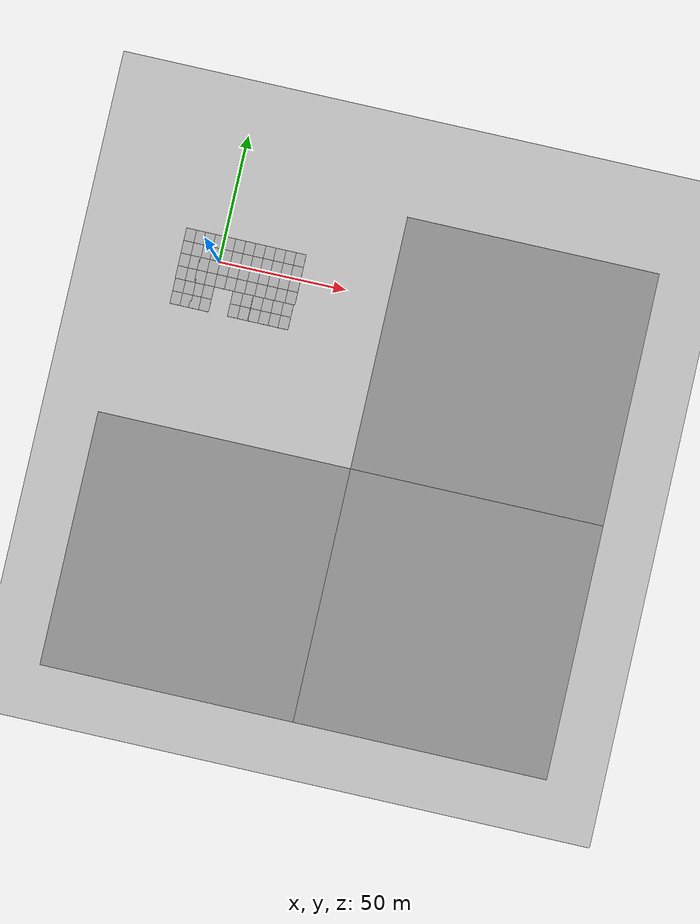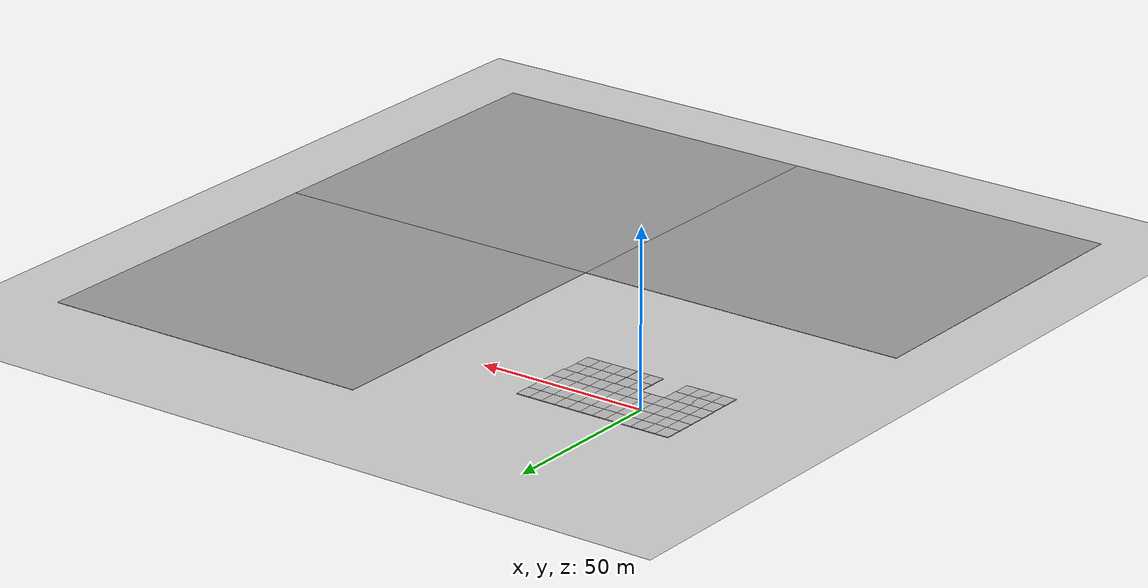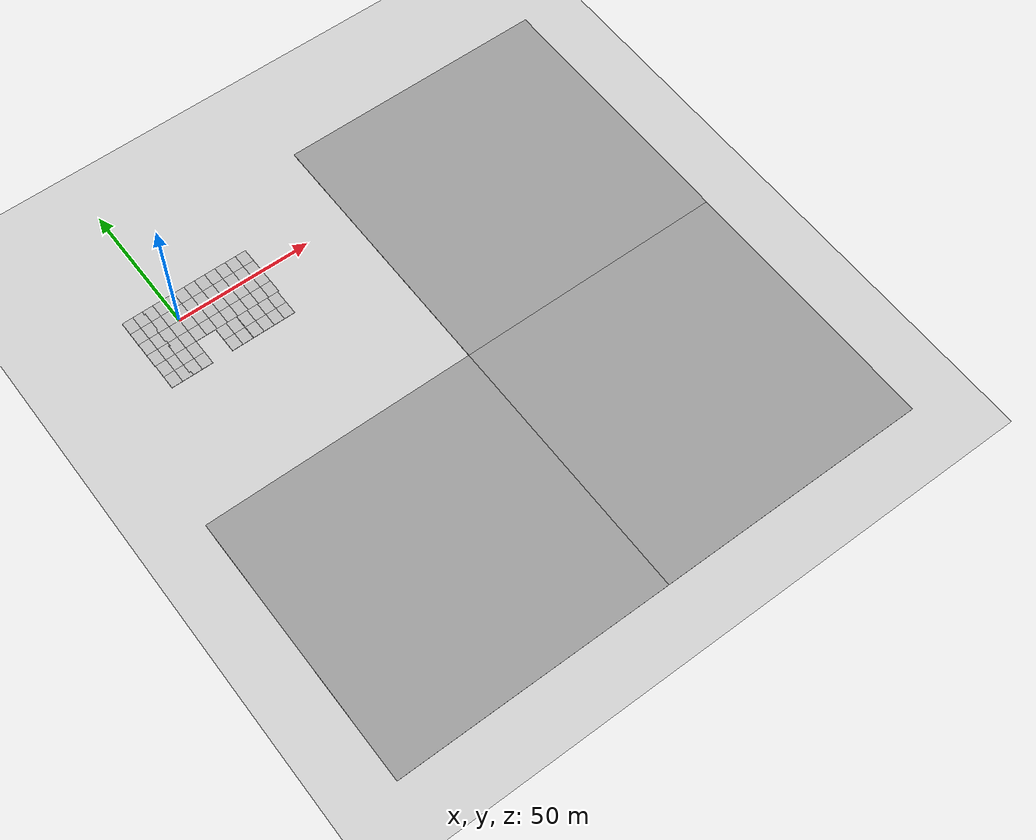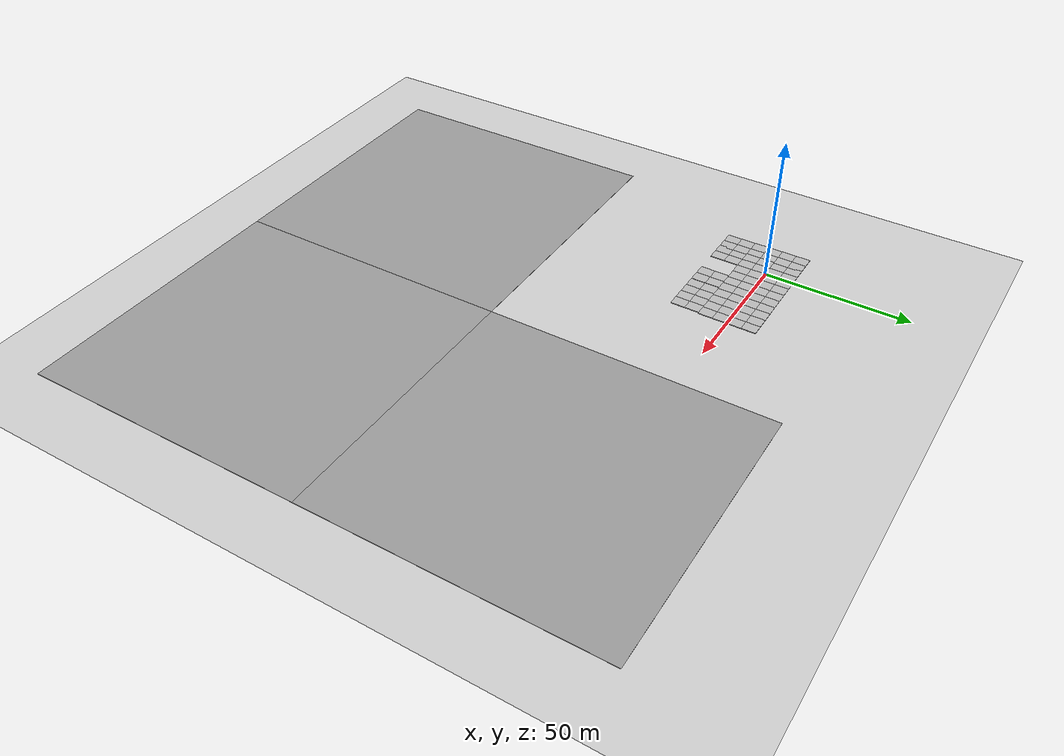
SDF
<sdf version="1.6">
 <world name="default">
  <light name="sun" type="directional">
   <pose>0 0 10 0 -0 0</pose>
   <diffuse>0.8 0.8 0.8 1</diffuse>
   <specular>0.2 0.2 0.2 1</specular>
   <attenuation>
    <range>1000</range>
    <constant>0.9</constant>
    <linear>0.01</linear>
    <quadratic>0.001</quadratic>
   </attenuation>
   <direction>-0.5 0.1 -0.9</direction>
  </light>
  <plugin name="ros_interface_plugin" filename="librotors_gazebo_ros_interface_plugin.so"/>
  <physics name="default_physics" default="0" type="ode">
   <ode>
    <solver>
     <type>quick</type>
     <iters>1000</iters>
     <sor>1.3</sor>
     <use_dynamic_moi_rescaling>0</use_dynamic_moi_rescaling>
    </solver>
    <constraints>
     <cfm>0</cfm>
     <erp>0.2</erp>
     <contact_max_correcting_vel>100</contact_max_correcting_vel>
     <contact_surface_layer>0.001</contact_surface_layer>
    </constraints>
   </ode>
   <max_step_size>0.01</max_step_size>
   <real_time_factor>1</real_time_factor>
   <real_time_update_rate>100</real_time_update_rate>
  </physics>
  <plugin name="gazebo_octomap" filename="librotors_gazebo_octomap_plugin.so">
   <octomapPubTopic>world/octomap</octomapPubTopic>
   <octomapServiceName>world/get_octomap</octomapServiceName>
  </plugin>
  <scene><ambient>0.4 0.4 0.4 1</ambient><background>0.7 0.7 0.7 1</background><shadows>1</shadows></scene>
  <spherical_coordinates>
   <surface_model>EARTH_WGS84</surface_model>
   <latitude_deg>47.3667</latitude_deg>
   <longitude_deg>8.55</longitude_deg>
   <elevation>500</elevation>
   <heading_deg>0</heading_deg>
  </spherical_coordinates>
  <model name="ground_plane">
   <static>1</static>
   <link name="link">
    <collision name="collision">
     <geometry><plane><normal>0 0 1</normal><size>100 100</size></plane></geometry>
     <surface><friction><ode><mu>100</mu><mu2>50</mu2></ode></friction></surface>
    </collision>
    <visual name="visual">
     <cast_shadows>0</cast_shadows>
     <geometry><plane><normal>0 0 1</normal><size>100 100</size></plane></geometry>
     <material>
      <script><uri>file://media/materials/scripts/gazebo.material</uri><name>Gazebo/Grey</name></script>
     </material>
    </visual>
    <velocity_decay><linear>0</linear><angular>0</angular></velocity_decay>
   </link>
   <pose>17 -17 0 0 -0 0</pose>
  </model>
  <model name="mud_box_0">
   <static>1</static>
   <link name="link">
    <collision name="collision"><geometry><box><size>8 10 0.2</size></box></geometry></collision>
    <visual name="visual_1">
     <pose>-2 2.5 0 0 -0 0</pose>
     <cast_shadows>0</cast_shadows>
     <geometry><box><size>4 5 0.2</size></box></geometry>
     <material>
      <script>
       <uri>model://mud_box/materials/scripts</uri>
       <uri>model://mud_box/materials/textures</uri>
       <name>vrc/mud</name>
      </script>
     </material>
    </visual>
    <visual name="visual_2">
     <pose>2 2.5 0 0 -0 0</pose>
     <cast_shadows>0</cast_shadows>
     <geometry><box><size>4 5 0.2</size></box></geometry>
     <material>
      <script>
       <uri>model://mud_box/materials/scripts</uri>
       <uri>model://mud_box/materials/textures</uri>
       <name>vrc/mud</name>
      </script>
     </material>
    </visual>
    <visual name="visual_3">
     <pose>2 -2.5 0 0 -0 0</pose>
     <cast_shadows>0</cast_shadows>
     <geometry><box><size>4 5 0.2</size></box></geometry>
     <material>
      <script>
       <uri>model://mud_box/materials/scripts</uri>
       <uri>model://mud_box/materials/textures</uri>
       <name>vrc/mud</name>
      </script>
     </material>
    </visual>
    <visual name="visual_4">
     <pose>-2 -2.5 0 0 -0 0</pose>
     <cast_shadows>0</cast_shadows>
     <geometry><box><size>4 5 0.2</size></box></geometry>
     <material>
      <script>
       <uri>model://mud_box/materials/scripts</uri>
       <uri>model://mud_box/materials/textures</uri>
       <name>vrc/mud</name>
      </script>
     </material>
    </visual>
    <velocity_decay><linear>0</linear><angular>0</angular></velocity_decay>
   </link>
   <pose>4 5 0 0 -0 0</pose>
  </model>
  <model name="mud_box_1">
   <static>1</static>
   <link name="link">
    <collision name="collision"><geometry><box><size>8 10 0.2</size></box></geometry></collision>
    <visual name="visual_1">
     <pose>-2 2.5 0 0 -0 0</pose>
     <cast_shadows>0</cast_shadows>
     <geometry><box><size>4 5 0.2</size></box></geometry>
     <material>
      <script>
       <uri>model://mud_box/materials/scripts</uri>
       <uri>model://mud_box/materials/textures</uri>
       <name>vrc/mud</name>
      </script>
     </material>
    </visual>
    <visual name="visual_2">
     <pose>2 2.5 0 0 -0 0</pose>
     <cast_shadows>0</cast_shadows>
     <geometry><box><size>4 5 0.2</size></box></geometry>
     <material>
      <script>
       <uri>model://mud_box/materials/scripts</uri>
       <uri>model://mud_box/materials/textures</uri>
       <name>vrc/mud</name>
      </script>
     </material>
    </visual>
    <visual name="visual_3">
     <pose>2 -2.5 0 0 -0 0</pose>
     <cast_shadows>0</cast_shadows>
     <geometry><box><size>4 5 0.2</size></box></geometry>
     <material>
      <script>
       <uri>model://mud_box/materials/scripts</uri>
       <uri>model://mud_box/materials/textures</uri>
       <name>vrc/mud</name>
      </script>
     </material>
    </visual>
    <visual name="visual_4">
     <pose>-2 -2.5 0 0 -0 0</pose>
     <cast_shadows>0</cast_shadows>
     <geometry><box><size>4 5 0.2</size></box></geometry>
     <material>
      <script>
       <uri>model://mud_box/materials/scripts</uri>
       <uri>model://mud_box/materials/textures</uri>
       <name>vrc/mud</name>
      </script>
     </material>
    </visual>
    <velocity_decay><linear>0</linear><angular>0</angular></velocity_decay>
   </link>
   <pose>-4 -5 0 0 -0 0</pose>
  </model>
  <model name="mud_box_2">
   <static>1</static>
   <link name="link">
    <collision name="collision"><geometry><box><size>8 10 0.2</size></box></geometry></collision>
    <visual name="visual_1">
     <pose>-2 2.5 0 0 -0 0</pose>
     <cast_shadows>0</cast_shadows>
     <geometry><box><size>4 5 0.2</size></box></geometry>
     <material>
      <script>
       <uri>model://mud_box/materials/scripts</uri>
       <uri>model://mud_box/materials/textures</uri>
       <name>vrc/mud</name>
      </script>
     </material>
    </visual>
    <visual name="visual_2">
     <pose>2 2.5 0 0 -0 0</pose>
     <cast_shadows>0</cast_shadows>
     <geometry><box><size>4 5 0.2</size></box></geometry>
     <material>
      <script>
       <uri>model://mud_box/materials/scripts</uri>
       <uri>model://mud_box/materials/textures</uri>
       <name>vrc/mud</name>
      </script>
     </material>
    </visual>
    <visual name="visual_3">
     <pose>2 -2.5 0 0 -0 0</pose>
     <cast_shadows>0</cast_shadows>
     <geometry><box><size>4 5 0.2</size></box></geometry>
     <material>
      <script>
       <uri>model://mud_box/materials/scripts</uri>
       <uri>model://mud_box/materials/textures</uri>
       <name>vrc/mud</name>
      </script>
     </material>
    </visual>
    <visual name="visual_4">
     <pose>-2 -2.5 0 0 -0 0</pose>
     <cast_shadows>0</cast_shadows>
     <geometry><box><size>4 5 0.2</size></box></geometry>
     <material>
      <script>
       <uri>model://mud_box/materials/scripts</uri>
       <uri>model://mud_box/materials/textures</uri>
       <name>vrc/mud</name>
      </script>
     </material>
    </visual>
    <velocity_decay><linear>0</linear><angular>0</angular></velocity_decay>
   </link>
   <pose>4 -5 0 0 -0 0</pose>
  </model>
  <model name="mud_box_3">
   <static>1</static>
   <link name="link">
    <collision name="collision"><geometry><box><size>8 10 0.2</size></box></geometry></collision>
    <visual name="visual_1">
     <pose>-2 2.5 0 0 -0 0</pose>
     <cast_shadows>0</cast_shadows>
     <geometry><box><size>4 5 0.2</size></box></geometry>
     <material>
      <script>
       <uri>model://mud_box/materials/scripts</uri>
       <uri>model://mud_box/materials/textures</uri>
       <name>vrc/mud</name>
      </script>
     </material>
    </visual>
    <visual name="visual_2">
     <pose>2 2.5 0 0 -0 0</pose>
     <cast_shadows>0</cast_shadows>
     <geometry><box><size>4 5 0.2</size></box></geometry>
     <material>
      <script>
       <uri>model://mud_box/materials/scripts</uri>
       <uri>model://mud_box/materials/textures</uri>
       <name>vrc/mud</name>
      </script>
     </material>
    </visual>
    <visual name="visual_3">
     <pose>2 -2.5 0 0 -0 0</pose>
     <cast_shadows>0</cast_shadows>
     <geometry><box><size>4 5 0.2</size></box></geometry>
     <material>
      <script>
       <uri>model://mud_box/materials/scripts</uri>
       <uri>model://mud_box/materials/textures</uri>
       <name>vrc/mud</name>
      </script>
     </material>
    </visual>
    <visual name="visual_4">
     <pose>-2 -2.5 0 0 -0 0</pose>
     <cast_shadows>0</cast_shadows>
     <geometry><box><size>4 5 0.2</size></box></geometry>
     <material>
      <script>
       <uri>model://mud_box/materials/scripts</uri>
       <uri>model://mud_box/materials/textures</uri>
       <name>vrc/mud</name>
      </script>
     </material>
    </visual>
    <velocity_decay><linear>0</linear><angular>0</angular></velocity_decay>
   </link>
   <pose>12 5 0 0 -0 0</pose>
  </model>
  <model name="mud_box_4">
   <static>1</static>
   <link name="link">
    <collision name="collision"><geometry><box><size>8 10 0.2</size></box></geometry></collision>
    <visual name="visual_1">
     <pose>-2 2.5 0 0 -0 0</pose>
     <cast_shadows>0</cast_shadows>
     <geometry><box><size>4 5 0.2</size></box></geometry>
     <material>
      <script>
       <uri>model://mud_box/materials/scripts</uri>
       <uri>model://mud_box/materials/textures</uri>
       <name>vrc/mud</name>
      </script>
     </material>
    </visual>
    <visual name="visual_2">
     <pose>2 2.5 0 0 -0 0</pose>
     <cast_shadows>0</cast_shadows>
     <geometry><box><size>4 5 0.2</size></box></geometry>
     <material>
      <script>
       <uri>model://mud_box/materials/scripts</uri>
       <uri>model://mud_box/materials/textures</uri>
       <name>vrc/mud</name>
      </script>
     </material>
    </visual>
    <visual name="visual_3">
     <pose>2 -2.5 0 0 -0 0</pose>
     <cast_shadows>0</cast_shadows>
     <geometry><box><size>4 5 0.2</size></box></geometry>
     <material>
      <script>
       <uri>model://mud_box/materials/scripts</uri>
       <uri>model://mud_box/materials/textures</uri>
       <name>vrc/mud</name>
      </script>
     </material>
    </visual>
    <visual name="visual_4">
     <pose>-2 -2.5 0 0 -0 0</pose>
     <cast_shadows>0</cast_shadows>
     <geometry><box><size>4 5 0.2</size></box></geometry>
     <material>
      <script>
       <uri>model://mud_box/materials/scripts</uri>
       <uri>model://mud_box/materials/textures</uri>
       <name>vrc/mud</name>
      </script>
     </material>
    </visual>
    <velocity_decay><linear>0</linear><angular>0</angular></velocity_decay>
   </link>
   <pose>-4 5 0 0 -0 0</pose>
  </model>
  <model name="mud_box_5">
   <static>1</static>
   <link name="link">
    <collision name="collision"><geometry><box><size>8 10 0.2</size></box></geometry></collision>
    <visual name="visual_1">
     <pose>-2 2.5 0 0 -0 0</pose>
     <cast_shadows>0</cast_shadows>
     <geometry><box><size>4 5 0.2</size></box></geometry>
     <material>
      <script>
       <uri>model://mud_box/materials/scripts</uri>
       <uri>model://mud_box/materials/textures</uri>
       <name>vrc/mud</name>
      </script>
     </material>
    </visual>
    <visual name="visual_2">
     <pose>2 2.5 0 0 -0 0</pose>
     <cast_shadows>0</cast_shadows>
     <geometry><box><size>4 5 0.2</size></box></geometry>
     <material>
      <script>
       <uri>model://mud_box/materials/scripts</uri>
       <uri>model://mud_box/materials/textures</uri>
       <name>vrc/mud</name>
      </script>
     </material>
    </visual>
    <visual name="visual_3">
     <pose>2 -2.5 0 0 -0 0</pose>
     <cast_shadows>0</cast_shadows>
     <geometry><box><size>4 5 0.2</size></box></geometry>
     <material>
      <script>
       <uri>model://mud_box/materials/scripts</uri>
       <uri>model://mud_box/materials/textures</uri>
       <name>vrc/mud</name>
      </script>
     </material>
    </visual>
    <visual name="visual_4">
     <pose>-2 -2.5 0 0 -0 0</pose>
     <cast_shadows>0</cast_shadows>
     <geometry><box><size>4 5 0.2</size></box></geometry>
     <material>
      <script>
       <uri>model://mud_box/materials/scripts</uri>
       <uri>model://mud_box/materials/textures</uri>
       <name>vrc/mud</name>
      </script>
     </material>
    </visual>
    <velocity_decay><linear>0</linear><angular>0</angular></velocity_decay>
   </link>
   <pose>-11.5813 5 0 0 -0 0</pose>
  </model>
  <model name="mud_box_6">
   <static>1</static>
   <link name="link">
    <collision name="collision"><geometry><box><size>8 10 0.2</size></box></geometry></collision>
    <visual name="visual_1">
     <pose>-2 2.5 0 0 -0 0</pose>
     <cast_shadows>0</cast_shadows>
     <geometry><box><size>4 5 0.2</size></box></geometry>
     <material>
      <script>
       <uri>model://mud_box/materials/scripts</uri>
       <uri>model://mud_box/materials/textures</uri>
       <name>vrc/mud</name>
      </script>
     </material>
    </visual>
    <visual name="visual_2">
     <pose>2 2.5 0 0 -0 0</pose>
     <cast_shadows>0</cast_shadows>
     <geometry><box><size>4 5 0.2</size></box></geometry>
     <material>
      <script>
       <uri>model://mud_box/materials/scripts</uri>
       <uri>model://mud_box/materials/textures</uri>
       <name>vrc/mud</name>
      </script>
     </material>
    </visual>
    <visual name="visual_3">
     <pose>2 -2.5 0 0 -0 0</pose>
     <cast_shadows>0</cast_shadows>
     <geometry><box><size>4 5 0.2</size></box></geometry>
     <material>
      <script>
       <uri>model://mud_box/materials/scripts</uri>
       <uri>model://mud_box/materials/textures</uri>
       <name>vrc/mud</name>
      </script>
     </material>
    </visual>
    <visual name="visual_4">
     <pose>-2 -2.5 0 0 -0 0</pose>
     <cast_shadows>0</cast_shadows>
     <geometry><box><size>4 5 0.2</size></box></geometry>
     <material>
      <script>
       <uri>model://mud_box/materials/scripts</uri>
       <uri>model://mud_box/materials/textures</uri>
       <name>vrc/mud</name>
      </script>
     </material>
    </visual>
    <velocity_decay><linear>0</linear><angular>0</angular></velocity_decay>
   </link>
   <pose>-11.5408 -5 0 0 -0 0</pose>
  </model>
  <model name="mud_box_7">
   <static>1</static>
   <link name="link">
    <collision name="collision"><geometry><box><size>8 10 0.2</size></box></geometry></collision>
    <visual name="visual_1">
     <pose>-2 2.5 0 0 -0 0</pose>
     <cast_shadows>0</cast_shadows>
     <geometry><box><size>4 5 0.2</size></box></geometry>
     <material>
      <script>
       <uri>model://mud_box/materials/scripts</uri>
       <uri>model://mud_box/materials/textures</uri>
       <name>vrc/mud</name>
      </script>
     </material>
    </visual>
    <visual name="visual_2">
     <pose>2 2.5 0 0 -0 0</pose>
     <cast_shadows>0</cast_shadows>
     <geometry><box><size>4 5 0.2</size></box></geometry>
     <material>
      <script>
       <uri>model://mud_box/materials/scripts</uri>
       <uri>model://mud_box/materials/textures</uri>
       <name>vrc/mud</name>
      </script>
     </material>
    </visual>
    <visual name="visual_3">
     <pose>2 -2.5 0 0 -0 0</pose>
     <cast_shadows>0</cast_shadows>
     <geometry><box><size>4 5 0.2</size></box></geometry>
     <material>
      <script>
       <uri>model://mud_box/materials/scripts</uri>
       <uri>model://mud_box/materials/textures</uri>
       <name>vrc/mud</name>
      </script>
     </material>
    </visual>
    <visual name="visual_4">
     <pose>-2 -2.5 0 0 -0 0</pose>
     <cast_shadows>0</cast_shadows>
     <geometry><box><size>4 5 0.2</size></box></geometry>
     <material>
      <script>
       <uri>model://mud_box/materials/scripts</uri>
       <uri>model://mud_box/materials/textures</uri>
       <name>vrc/mud</name>
      </script>
     </material>
    </visual>
    <velocity_decay><linear>0</linear><angular>0</angular></velocity_decay>
   </link>
   <pose>-11.4023 -15 0 0 -0 0</pose>
  </model>
  <model name="mud_box_8">
   <static>1</static>
   <link name="link">
    <collision name="collision"><geometry><box><size>8 10 0.2</size></box></geometry></collision>
    <visual name="visual_1">
     <pose>-2 2.5 0 0 -0 0</pose>
     <cast_shadows>0</cast_shadows>
     <geometry><box><size>4 5 0.2</size></box></geometry>
     <material>
      <script>
       <uri>model://mud_box/materials/scripts</uri>
       <uri>model://mud_box/materials/textures</uri>
       <name>vrc/mud</name>
      </script>
     </material>
    </visual>
    <visual name="visual_2">
     <pose>2 2.5 0 0 -0 0</pose>
     <cast_shadows>0</cast_shadows>
     <geometry><box><size>4 5 0.2</size></box></geometry>
     <material>
      <script>
       <uri>model://mud_box/materials/scripts</uri>
       <uri>model://mud_box/materials/textures</uri>
       <name>vrc/mud</name>
      </script>
     </material>
    </visual>
    <visual name="visual_3">
     <pose>2 -2.5 0 0 -0 0</pose>
     <cast_shadows>0</cast_shadows>
     <geometry><box><size>4 5 0.2</size></box></geometry>
     <material>
      <script>
       <uri>model://mud_box/materials/scripts</uri>
       <uri>model://mud_box/materials/textures</uri>
       <name>vrc/mud</name>
      </script>
     </material>
    </visual>
    <visual name="visual_4">
     <pose>-2 -2.5 0 0 -0 0</pose>
     <cast_shadows>0</cast_shadows>
     <geometry><box><size>4 5 0.2</size></box></geometry>
     <material>
      <script>
       <uri>model://mud_box/materials/scripts</uri>
       <uri>model://mud_box/materials/textures</uri>
       <name>vrc/mud</name>
      </script>
     </material>
    </visual>
    <velocity_decay><linear>0</linear><angular>0</angular></velocity_decay>
   </link>
   <pose>-4 -15 0 0 -0 0</pose>
  </model>
  <model name="mud_box_9">
   <static>1</static>
   <link name="link">
    <collision name="collision"><geometry><box><size>8 10 0.2</size></box></geometry></collision>
    <visual name="visual_1">
     <pose>-2 2.5 0 0 -0 0</pose>
     <cast_shadows>0</cast_shadows>
     <geometry><box><size>4 5 0.2</size></box></geometry>
     <material>
      <script>
       <uri>model://mud_box/materials/scripts</uri>
       <uri>model://mud_box/materials/textures</uri>
       <name>vrc/mud</name>
      </script>
     </material>
    </visual>
    <visual name="visual_2">
     <pose>2 2.5 0 0 -0 0</pose>
     <cast_shadows>0</cast_shadows>
     <geometry><box><size>4 5 0.2</size></box></geometry>
     <material>
      <script>
       <uri>model://mud_box/materials/scripts</uri>
       <uri>model://mud_box/materials/textures</uri>
       <name>vrc/mud</name>
      </script>
     </material>
    </visual>
    <visual name="visual_3">
     <pose>2 -2.5 0 0 -0 0</pose>
     <cast_shadows>0</cast_shadows>
     <geometry><box><size>4 5 0.2</size></box></geometry>
     <material>
      <script>
       <uri>model://mud_box/materials/scripts</uri>
       <uri>model://mud_box/materials/textures</uri>
       <name>vrc/mud</name>
      </script>
     </material>
    </visual>
    <visual name="visual_4">
     <pose>-2 -2.5 0 0 -0 0</pose>
     <cast_shadows>0</cast_shadows>
     <geometry><box><size>4 5 0.2</size></box></geometry>
     <material>
      <script>
       <uri>model://mud_box/materials/scripts</uri>
       <uri>model://mud_box/materials/textures</uri>
       <name>vrc/mud</name>
      </script>
     </material>
    </visual>
    <velocity_decay><linear>0</linear><angular>0</angular></velocity_decay>
   </link>
   <pose>12 -5 0 0 -0 0</pose>
  </model>
  <model name="mud_box_10">
   <static>1</static>
   <link name="link">
    <collision name="collision"><geometry><box><size>8 10 0.2</size></box></geometry></collision>
    <visual name="visual_1">
     <pose>-2 2.5 0 0 -0 0</pose>
     <cast_shadows>0</cast_shadows>
     <geometry><box><size>4 5 0.2</size></box></geometry>
     <material>
      <script>
       <uri>model://mud_box/materials/scripts</uri>
       <uri>model://mud_box/materials/textures</uri>
       <name>vrc/mud</name>
      </script>
     </material>
    </visual>
    <visual name="visual_2">
     <pose>2 2.5 0 0 -0 0</pose>
     <cast_shadows>0</cast_shadows>
     <geometry><box><size>4 5 0.2</size></box></geometry>
     <material>
      <script>
       <uri>model://mud_box/materials/scripts</uri>
       <uri>model://mud_box/materials/textures</uri>
       <name>vrc/mud</name>
      </script>
     </material>
    </visual>
    <visual name="visual_3">
     <pose>2 -2.5 0 0 -0 0</pose>
     <cast_shadows>0</cast_shadows>
     <geometry><box><size>4 5 0.2</size></box></geometry>
     <material>
      <script>
       <uri>model://mud_box/materials/scripts</uri>
       <uri>model://mud_box/materials/textures</uri>
       <name>vrc/mud</name>
      </script>
     </material>
    </visual>
    <visual name="visual_4">
     <pose>-2 -2.5 0 0 -0 0</pose>
     <cast_shadows>0</cast_shadows>
     <geometry><box><size>4 5 0.2</size></box></geometry>
     <material>
      <script>
       <uri>model://mud_box/materials/scripts</uri>
       <uri>model://mud_box/materials/textures</uri>
       <name>vrc/mud</name>
      </script>
     </material>
    </visual>
    <velocity_decay><linear>0</linear><angular>0</angular></velocity_decay>
   </link>
   <pose>20 5 0 0 -0 0</pose>
  </model>
  <model name="mud_box_11">
   <static>1</static>
   <link name="link">
    <collision name="collision"><geometry><box><size>8 10 0.2</size></box></geometry></collision>
    <visual name="visual_1">
     <pose>-2 2.5 0 0 -0 0</pose>
     <cast_shadows>0</cast_shadows>
     <geometry><box><size>4 5 0.2</size></box></geometry>
     <material>
      <script>
       <uri>model://mud_box/materials/scripts</uri>
       <uri>model://mud_box/materials/textures</uri>
       <name>vrc/mud</name>
      </script>
     </material>
    </visual>
    <visual name="visual_2">
     <pose>2 2.5 0 0 -0 0</pose>
     <cast_shadows>0</cast_shadows>
     <geometry><box><size>4 5 0.2</size></box></geometry>
     <material>
      <script>
       <uri>model://mud_box/materials/scripts</uri>
       <uri>model://mud_box/materials/textures</uri>
       <name>vrc/mud</name>
      </script>
     </material>
    </visual>
    <visual name="visual_3">
     <pose>2 -2.5 0 0 -0 0</pose>
     <cast_shadows>0</cast_shadows>
     <geometry><box><size>4 5 0.2</size></box></geometry>
     <material>
      <script>
       <uri>model://mud_box/materials/scripts</uri>
       <uri>model://mud_box/materials/textures</uri>
       <name>vrc/mud</name>
      </script>
     </material>
    </visual>
    <visual name="visual_4">
     <pose>-2 -2.5 0 0 -0 0</pose>
     <cast_shadows>0</cast_shadows>
     <geometry><box><size>4 5 0.2</size></box></geometry>
     <material>
      <script>
       <uri>model://mud_box/materials/scripts</uri>
       <uri>model://mud_box/materials/textures</uri>
       <name>vrc/mud</name>
      </script>
     </material>
    </visual>
    <velocity_decay><linear>0</linear><angular>0</angular></velocity_decay>
   </link>
   <pose>20 -5 0 0 -0 0</pose>
  </model>
  <model name="mud_box_12">
   <static>1</static>
   <link name="link">
    <collision name="collision"><geometry><box><size>8 10 0.2</size></box></geometry></collision>
    <visual name="visual_1">
     <pose>-2 2.5 0 0 -0 0</pose>
     <cast_shadows>0</cast_shadows>
     <geometry><box><size>4 5 0.2</size></box></geometry>
     <material>
      <script>
       <uri>model://mud_box/materials/scripts</uri>
       <uri>model://mud_box/materials/textures</uri>
       <name>vrc/mud</name>
      </script>
     </material>
    </visual>
    <visual name="visual_2">
     <pose>2 2.5 0 0 -0 0</pose>
     <cast_shadows>0</cast_shadows>
     <geometry><box><size>4 5 0.2</size></box></geometry>
     <material>
      <script>
       <uri>model://mud_box/materials/scripts</uri>
       <uri>model://mud_box/materials/textures</uri>
       <name>vrc/mud</name>
      </script>
     </material>
    </visual>
    <visual name="visual_3">
     <pose>2 -2.5 0 0 -0 0</pose>
     <cast_shadows>0</cast_shadows>
     <geometry><box><size>4 5 0.2</size></box></geometry>
     <material>
      <script>
       <uri>model://mud_box/materials/scripts</uri>
       <uri>model://mud_box/materials/textures</uri>
       <name>vrc/mud</name>
      </script>
     </material>
    </visual>
    <visual name="visual_4">
     <pose>-2 -2.5 0 0 -0 0</pose>
     <cast_shadows>0</cast_shadows>
     <geometry><box><size>4 5 0.2</size></box></geometry>
     <material>
      <script>
       <uri>model://mud_box/materials/scripts</uri>
       <uri>model://mud_box/materials/textures</uri>
       <name>vrc/mud</name>
      </script>
     </material>
    </visual>
    <velocity_decay><linear>0</linear><angular>0</angular></velocity_decay>
   </link>
   <pose>28 5 0 0 -0 0</pose>
  </model>
  <model name="mud_box_13">
   <static>1</static>
   <link name="link">
    <collision name="collision"><geometry><box><size>8 10 0.2</size></box></geometry></collision>
    <visual name="visual_1">
     <pose>-2 2.5 0 0 -0 0</pose>
     <cast_shadows>0</cast_shadows>
     <geometry><box><size>4 5 0.2</size></box></geometry>
     <material>
      <script>
       <uri>model://mud_box/materials/scripts</uri>
       <uri>model://mud_box/materials/textures</uri>
       <name>vrc/mud</name>
      </script>
     </material>
    </visual>
    <visual name="visual_2">
     <pose>2 2.5 0 0 -0 0</pose>
     <cast_shadows>0</cast_shadows>
     <geometry><box><size>4 5 0.2</size></box></geometry>
     <material>
      <script>
       <uri>model://mud_box/materials/scripts</uri>
       <uri>model://mud_box/materials/textures</uri>
       <name>vrc/mud</name>
      </script>
     </material>
    </visual>
    <visual name="visual_3">
     <pose>2 -2.5 0 0 -0 0</pose>
     <cast_shadows>0</cast_shadows>
     <geometry><box><size>4 5 0.2</size></box></geometry>
     <material>
      <script>
       <uri>model://mud_box/materials/scripts</uri>
       <uri>model://mud_box/materials/textures</uri>
       <name>vrc/mud</name>
      </script>
     </material>
    </visual>
    <visual name="visual_4">
     <pose>-2 -2.5 0 0 -0 0</pose>
     <cast_shadows>0</cast_shadows>
     <geometry><box><size>4 5 0.2</size></box></geometry>
     <material>
      <script>
       <uri>model://mud_box/materials/scripts</uri>
       <uri>model://mud_box/materials/textures</uri>
       <name>vrc/mud</name>
      </script>
     </material>
    </visual>
    <velocity_decay><linear>0</linear><angular>0</angular></velocity_decay>
   </link>
   <pose>28 -5 0 0 -0 0</pose>
  </model>
  <model name="mud_box_14">
   <static>1</static>
   <link name="link">
    <collision name="collision"><geometry><box><size>8 10 0.2</size></box></geometry></collision>
    <visual name="visual_1">
     <pose>-2 2.5 0 0 -0 0</pose>
     <cast_shadows>0</cast_shadows>
     <geometry><box><size>4 5 0.2</size></box></geometry>
     <material>
      <script>
       <uri>model://mud_box/materials/scripts</uri>
       <uri>model://mud_box/materials/textures</uri>
       <name>vrc/mud</name>
      </script>
     </material>
    </visual>
    <visual name="visual_2">
     <pose>2 2.5 0 0 -0 0</pose>
     <cast_shadows>0</cast_shadows>
     <geometry><box><size>4 5 0.2</size></box></geometry>
     <material>
      <script>
       <uri>model://mud_box/materials/scripts</uri>
       <uri>model://mud_box/materials/textures</uri>
       <name>vrc/mud</name>
      </script>
     </material>
    </visual>
    <visual name="visual_3">
     <pose>2 -2.5 0 0 -0 0</pose>
     <cast_shadows>0</cast_shadows>
     <geometry><box><size>4 5 0.2</size></box></geometry>
     <material>
      <script>
       <uri>model://mud_box/materials/scripts</uri>
       <uri>model://mud_box/materials/textures</uri>
       <name>vrc/mud</name>
      </script>
     </material>
    </visual>
    <visual name="visual_4">
     <pose>-2 -2.5 0 0 -0 0</pose>
     <cast_shadows>0</cast_shadows>
     <geometry><box><size>4 5 0.2</size></box></geometry>
     <material>
      <script>
       <uri>model://mud_box/materials/scripts</uri>
       <uri>model://mud_box/materials/textures</uri>
       <name>vrc/mud</name>
      </script>
     </material>
    </visual>
    <velocity_decay><linear>0</linear><angular>0</angular></velocity_decay>
   </link>
   <pose>27.5166 -15 0 0 -0 0</pose>
  </model>
  <model name="mud_box_15">
   <static>1</static>
   <link name="link">
    <collision name="collision"><geometry><box><size>8 10 0.2</size></box></geometry></collision>
    <visual name="visual_1">
     <pose>-2 2.5 0 0 -0 0</pose>
     <cast_shadows>0</cast_shadows>
     <geometry><box><size>4 5 0.2</size></box></geometry>
     <material>
      <script>
       <uri>model://mud_box/materials/scripts</uri>
       <uri>model://mud_box/materials/textures</uri>
       <name>vrc/mud</name>
      </script>
     </material>
    </visual>
    <visual name="visual_2">
     <pose>2 2.5 0 0 -0 0</pose>
     <cast_shadows>0</cast_shadows>
     <geometry><box><size>4 5 0.2</size></box></geometry>
     <material>
      <script>
       <uri>model://mud_box/materials/scripts</uri>
       <uri>model://mud_box/materials/textures</uri>
       <name>vrc/mud</name>
      </script>
     </material>
    </visual>
    <visual name="visual_3">
     <pose>2 -2.5 0 0 -0 0</pose>
     <cast_shadows>0</cast_shadows>
     <geometry><box><size>4 5 0.2</size></box></geometry>
     <material>
      <script>
       <uri>model://mud_box/materials/scripts</uri>
       <uri>model://mud_box/materials/textures</uri>
       <name>vrc/mud</name>
      </script>
     </material>
    </visual>
    <visual name="visual_4">
     <pose>-2 -2.5 0 0 -0 0</pose>
     <cast_shadows>0</cast_shadows>
     <geometry><box><size>4 5 0.2</size></box></geometry>
     <material>
      <script>
       <uri>model://mud_box/materials/scripts</uri>
       <uri>model://mud_box/materials/textures</uri>
       <name>vrc/mud</name>
      </script>
     </material>
    </visual>
    <velocity_decay><linear>0</linear><angular>0</angular></velocity_decay>
   </link>
   <pose>19.5897 -15 0 0 -0 0</pose>
  </model>
  <model name="mud_box_16">
   <static>1</static>
   <link name="link">
    <collision name="collision"><geometry><box><size>8 10 0.2</size></box></geometry></collision>
    <visual name="visual_1">
     <pose>-2 2.5 0 0 -0 0</pose>
     <cast_shadows>0</cast_shadows>
     <geometry><box><size>4 5 0.2</size></box></geometry>
     <material>
      <script>
       <uri>model://mud_box/materials/scripts</uri>
       <uri>model://mud_box/materials/textures</uri>
       <name>vrc/mud</name>
      </script>
     </material>
    </visual>
    <visual name="visual_2">
     <pose>2 2.5 0 0 -0 0</pose>
     <cast_shadows>0</cast_shadows>
     <geometry><box><size>4 5 0.2</size></box></geometry>
     <material>
      <script>
       <uri>model://mud_box/materials/scripts</uri>
       <uri>model://mud_box/materials/textures</uri>
       <name>vrc/mud</name>
      </script>
     </material>
    </visual>
    <visual name="visual_3">
     <pose>2 -2.5 0 0 -0 0</pose>
     <cast_shadows>0</cast_shadows>
     <geometry><box><size>4 5 0.2</size></box></geometry>
     <material>
      <script>
       <uri>model://mud_box/materials/scripts</uri>
       <uri>model://mud_box/materials/textures</uri>
       <name>vrc/mud</name>
      </script>
     </material>
    </visual>
    <visual name="visual_4">
     <pose>-2 -2.5 0 0 -0 0</pose>
     <cast_shadows>0</cast_shadows>
     <geometry><box><size>4 5 0.2</size></box></geometry>
     <material>
      <script>
       <uri>model://mud_box/materials/scripts</uri>
       <uri>model://mud_box/materials/textures</uri>
       <name>vrc/mud</name>
      </script>
     </material>
    </visual>
    <velocity_decay><linear>0</linear><angular>0</angular></velocity_decay>
   </link>
   <pose>11.4583 -15 0 0 -0 0</pose>
  </model>
  <gravity>0 0 -9.8</gravity>
  <magnetic_field>6e-06 2.3e-05 -4.2e-05</magnetic_field>
  <atmosphere type="adiabatic"/>
  <audio><device>default</device></audio>
  <model name="ground_plane_0">
   <static>1</static>
   <link name="link">
    <collision name="collision">
     <geometry><plane><normal>0 0 1</normal><size>100 100</size></plane></geometry>
     <surface><friction><ode><mu>100</mu><mu2>50</mu2></ode></friction></surface>
    </collision>
    <visual name="visual">
     <cast_shadows>0</cast_shadows>
     <geometry><plane><normal>0 0 1</normal><size>100 100</size></plane></geometry>
     <material>
      <script><uri>file://media/materials/scripts/gazebo.material</uri><name>Gazebo/Grey</name></script>
     </material>
    </visual>
   </link>
   <pose>17 -117 0 0 -0 0</pose>
  </model>
  <model name="ground_plane_1">
   <static>1</static>
   <link name="link">
    <collision name="collision">
     <geometry><plane><normal>0 0 1</normal><size>100 100</size></plane></geometry>
     <surface><friction><ode><mu>100</mu><mu2>50</mu2></ode></friction></surface>
    </collision>
    <visual name="visual">
     <cast_shadows>0</cast_shadows>
     <geometry><plane><normal>0 0 1</normal><size>100 100</size></plane></geometry>
     <material>
      <script><uri>file://media/materials/scripts/gazebo.material</uri><name>Gazebo/Grey</name></script>
     </material>
    </visual>
   </link>
   <pose>117 -117 0 0 -0 0</pose>
  </model>
  <model name="ground_plane_2">
   <static>1</static>
   <link name="link">
    <collision name="collision">
     <geometry><plane><normal>0 0 1</normal><size>100 100</size></plane></geometry>
     <surface><friction><ode><mu>100</mu><mu2>50</mu2></ode></friction></surface>
    </collision>
    <visual name="visual">
     <cast_shadows>0</cast_shadows>
     <geometry><plane><normal>0 0 1</normal><size>100 100</size></plane></geometry>
     <material>
      <script><uri>file://media/materials/scripts/gazebo.material</uri><name>Gazebo/Grey</name></script>
     </material>
    </visual>
   </link>
   <pose>117 -17 0 0 -0 0</pose>
  </model>
 </world>
</sdf>
